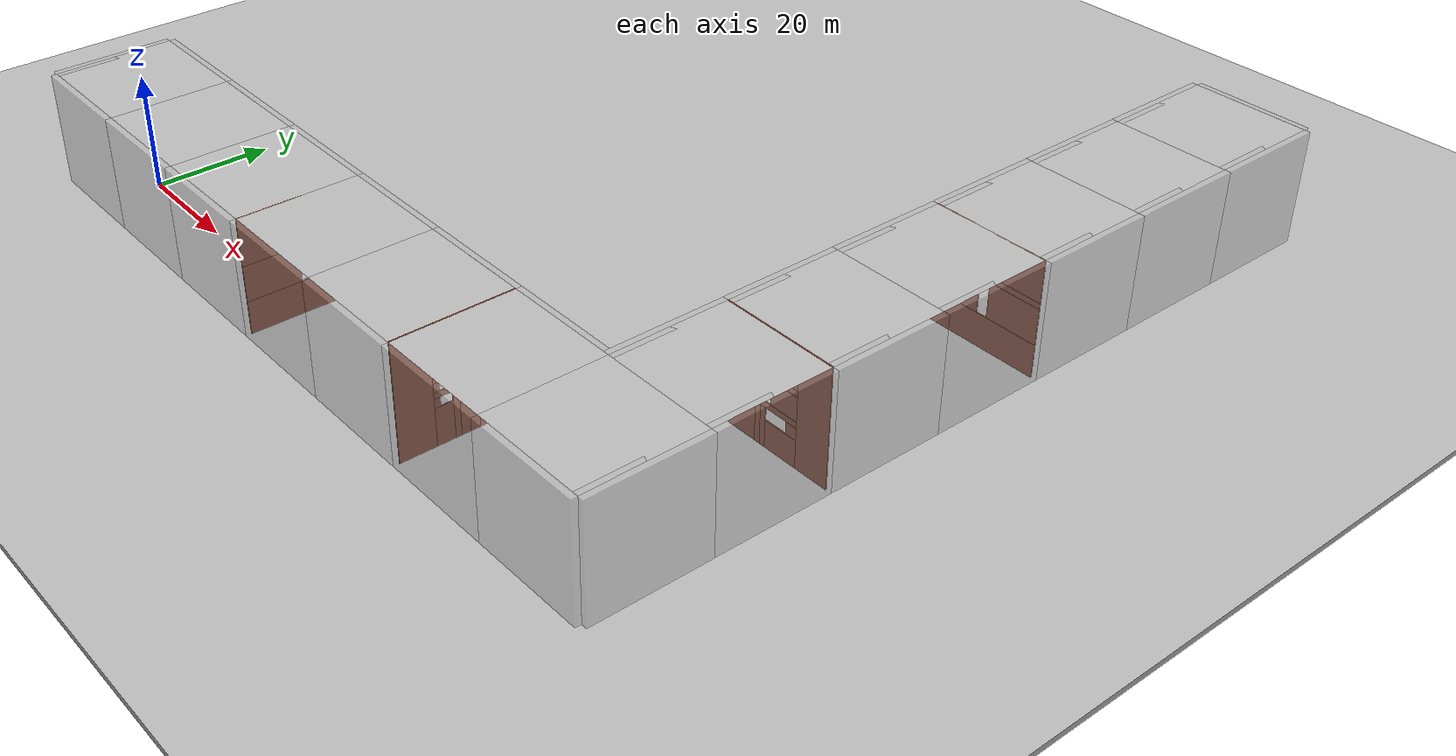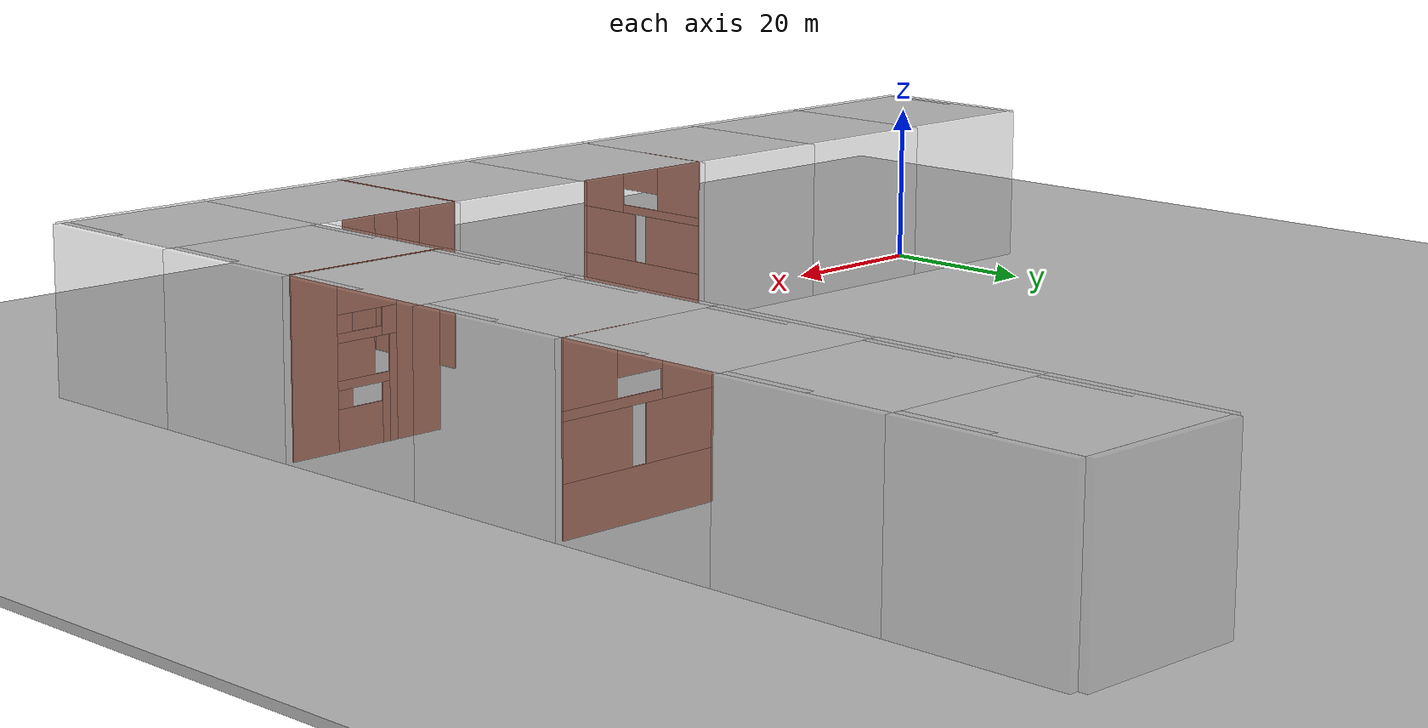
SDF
<?xml version="1.0" ?>
<sdf version="1.5">
  <world name="default">

    <gui>
      <camera name="user_camera">
        <pose>-7.5 -8.7 2.7 0.0 0.28 0.84</pose>
        <track_visual>
          <static>true</static>
          <use_model_frame>true</use_model_frame>
          <xyz>-5 1 1</xyz>
          <inherit_yaw>true</inherit_yaw>
        </track_visual>
      </camera>
    </gui>

    <scene>
      <ambient>0.8 0.8 0.8 1.0</ambient>
      <grid>false</grid>
      <shadows>true</shadows>
      <sky>
        <clouds>
          <speed>12</speed>
        </clouds>
      </sky>
    </scene>

    <light type="spot" name="light_1">
      <cast_shadows>true</cast_shadows>
      <pose>10 0 20 0 0 0</pose>
      <attenuation>
        <range>300</range>
        <constant>0.5</constant>
        <linear>0.01</linear>
        <quadratic>0.001</quadratic>
      </attenuation>
      <spot>
        <inner_angle>0.9</inner_angle>
        <outer_angle>2.0</outer_angle>
        <falloff>1.0</falloff>
      </spot>
      <direction>0 0 -1</direction>
    </light>

    <light type="spot" name="light_2">
      <cast_shadows>true</cast_shadows>
      <pose>30 0 20 0 0 0</pose>
      <attenuation>
        <range>300</range>
        <constant>0.5</constant>
        <linear>0.01</linear>
        <quadratic>0.001</quadratic>
      </attenuation>
      <spot>
        <inner_angle>0.9</inner_angle>
        <outer_angle>2.0</outer_angle>
        <falloff>1.0</falloff>
      </spot>
      <direction>0 0 -1</direction>
    </light>

    <light type="spot" name="light_3">
      <cast_shadows>true</cast_shadows>
      <pose>50 0 20 0 0 0</pose>
      <attenuation>
        <range>300</range>
        <constant>0.5</constant>
        <linear>0.01</linear>
        <quadratic>0.001</quadratic>
      </attenuation>
      <spot>
        <inner_angle>0.9</inner_angle>
        <outer_angle>2.0</outer_angle>
        <falloff>1.0</falloff>
      </spot>
      <direction>0 0 -1</direction>
    </light>

    <light type="spot" name="light_4">
      <cast_shadows>true</cast_shadows>
      <pose>70 0 20 0 0 0</pose>
      <attenuation>
        <range>300</range>
        <constant>0.5</constant>
        <linear>0.01</linear>
        <quadratic>0.001</quadratic>
      </attenuation>
      <spot>
        <inner_angle>0.9</inner_angle>
        <outer_angle>2.0</outer_angle>
        <falloff>1.0</falloff>
      </spot>
      <direction>0 0 -1</direction>
    </light>

    <light type="spot" name="light_5">
      <cast_shadows>true</cast_shadows>
      <pose>90 0 20 0 0 0</pose>
      <attenuation>
        <range>300</range>
        <constant>0.5</constant>
        <linear>0.01</linear>
        <quadratic>0.001</quadratic>
      </attenuation>
      <spot>
        <inner_angle>0.9</inner_angle>
        <outer_angle>2.0</outer_angle>
        <falloff>1.0</falloff>
      </spot>
      <direction>0 0 -1</direction>
    </light>

    <light type="spot" name="light_6">
      <cast_shadows>true</cast_shadows>
      <pose>110 0 20 0 0 0</pose>
      <attenuation>
        <range>300</range>
        <constant>0.5</constant>
        <linear>0.01</linear>
        <quadratic>0.001</quadratic>
      </attenuation>
      <spot>
        <inner_angle>0.9</inner_angle>
        <outer_angle>2.0</outer_angle>
        <falloff>1.0</falloff>
      </spot>
      <direction>0 0 -1</direction>
    </light>

    <light type="spot" name="light_7_1">
      <cast_shadows>true</cast_shadows>
      <pose>120 0 20 0 0 0</pose>
      <attenuation>
        <range>300</range>
        <constant>0.5</constant>
        <linear>0.01</linear>
        <quadratic>0.001</quadratic>
      </attenuation>
      <spot>
        <inner_angle>0.9</inner_angle>
        <outer_angle>2.0</outer_angle>
        <falloff>1.0</falloff>
      </spot>
      <direction>0 0 -1</direction>
    </light>

    <light type="spot" name="light_7_2">
      <cast_shadows>true</cast_shadows>
      <pose>120 10 20 0 0 0</pose>
      <attenuation>
        <range>300</range>
        <constant>0.5</constant>
        <linear>0.01</linear>
        <quadratic>0.001</quadratic>
      </attenuation>
      <spot>
        <inner_angle>0.9</inner_angle>
        <outer_angle>2.0</outer_angle>
        <falloff>1.0</falloff>
      </spot>
      <direction>0 0 -1</direction>
    </light>

    <light type="spot" name="light_8">
      <cast_shadows>true</cast_shadows>
      <pose>120 20 20 0 0 0</pose>
      <attenuation>
        <range>300</range>
        <constant>0.5</constant>
        <linear>0.01</linear>
        <quadratic>0.001</quadratic>
      </attenuation>
      <spot>
        <inner_angle>0.9</inner_angle>
        <outer_angle>2.0</outer_angle>
        <falloff>1.0</falloff>
      </spot>
      <direction>0 0 -1</direction>
    </light>

    <light type="spot" name="light_9">
      <cast_shadows>true</cast_shadows>
      <pose>120 40 20 0 0 0</pose>
      <attenuation>
        <range>300</range>
        <constant>0.5</constant>
        <linear>0.01</linear>
        <quadratic>0.001</quadratic>
      </attenuation>
      <spot>
        <inner_angle>0.9</inner_angle>
        <outer_angle>2.0</outer_angle>
        <falloff>1.0</falloff>
      </spot>
      <direction>0 0 -1</direction>
    </light>

    <light type="spot" name="light_10">
      <cast_shadows>true</cast_shadows>
      <pose>120 60 20 0 0 0</pose>
      <attenuation>
        <range>300</range>
        <constant>0.5</constant>
        <linear>0.01</linear>
        <quadratic>0.001</quadratic>
      </attenuation>
      <spot>
        <inner_angle>0.9</inner_angle>
        <outer_angle>2.0</outer_angle>
        <falloff>1.0</falloff>
      </spot>
      <direction>0 0 -1</direction>
    </light>

    <light type="spot" name="light_11">
      <cast_shadows>true</cast_shadows>
      <pose>120 80 20 0 0 0</pose>
      <attenuation>
        <range>300</range>
        <constant>0.5</constant>
        <linear>0.01</linear>
        <quadratic>0.001</quadratic>
      </attenuation>
      <spot>
        <inner_angle>0.9</inner_angle>
        <outer_angle>2.0</outer_angle>
        <falloff>1.0</falloff>
      </spot>
      <direction>0 0 -1</direction>
    </light>

    <light type="spot" name="light_12">
      <cast_shadows>true</cast_shadows>
      <pose>120 100 20 0 0 0</pose>
      <attenuation>
        <range>300</range>
        <constant>0.5</constant>
        <linear>0.01</linear>
        <quadratic>0.001</quadratic>
      </attenuation>
      <spot>
        <inner_angle>0.9</inner_angle>
        <outer_angle>2.0</outer_angle>
        <falloff>1.0</falloff>
      </spot>
      <direction>0 0 -1</direction>
    </light>

    <light type="spot" name="light_13">
      <cast_shadows>true</cast_shadows>
      <pose>120 120 20 0 0 0</pose>
      <attenuation>
        <range>300</range>
        <constant>0.5</constant>
        <linear>0.01</linear>
        <quadratic>0.001</quadratic>
      </attenuation>
      <spot>
        <inner_angle>0.9</inner_angle>
        <outer_angle>2.0</outer_angle>
        <falloff>1.0</falloff>
      </spot>
      <direction>0 0 -1</direction>
    </light>

    <include>
      <uri>model://race</uri>
      <pose>-10 0 0 0 0 0</pose>
    </include>

    <include>
      <uri>model://grass_plane</uri>
      <pose>0 0 0 0 0 0</pose>
    </include>

    <include>
      <uri>model://barycenter</uri>
      <pose>0 0 0 0 0 0</pose>
    </include>

    <physics name='default_physics' default='0' type='ode'>
      <gravity>0 0 -9.8066</gravity>
      <ode>
        <solver>
          <type>quick</type>
          <iters>10</iters>
          <sor>1.3</sor>
          <use_dynamic_moi_rescaling>0</use_dynamic_moi_rescaling>
        </solver>
        <constraints>
          <cfm>0</cfm>
          <erp>0.2</erp>
          <contact_max_correcting_vel>100</contact_max_correcting_vel>
          <contact_surface_layer>0.001</contact_surface_layer>
        </constraints>
      </ode>
      <max_step_size>0.004</max_step_size>
      <real_time_factor>1</real_time_factor>
      <real_time_update_rate>250</real_time_update_rate>
      <magnetic_field>6e-06 2.3e-05 -4.2e-05</magnetic_field>
    </physics>
  </world>
</sdf>

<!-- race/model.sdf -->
<sdf version='1.6'>
    <model name='race_box'>

        <static>1</static>
        <allow_auto_disable>1</allow_auto_disable>

        <!-- Start block -->

        <include>
            <uri>model://start_place</uri>
            <name>start_plane</name>
            <pose>10 0 0.1 0 0 1.57</pose>
        </include>

        <include>
            <uri>model://oneSidedPlane_2</uri>
            <name>floor_plane_1</name>
            <pose>10 0 20 0 0 0</pose>
        </include>

        <include>
            <uri>model://new_wall</uri>
            <name>back_wall</name>
            <pose>0 0 10 -1.57 -3.14 1.57</pose>
        </include>

        <include>
            <uri>model://new_wall</uri>
            <name>wall_1</name>
            <pose>10 10 10 -1.57 -0 0</pose>
        </include>

        <include>
            <uri>model://new_wall</uri>
            <name>wall_2</name>
            <pose>10 -10 10 1.57 -0 0</pose>
        </include>

        <!-- First block -->

        <include>
            <uri>model://oneSidedPlane_2</uri>
            <name>floor_plane_2</name>
            <pose>30 0 20 0 0 0</pose>
        </include>

        <include>
            <uri>model://oneSidedPlane_2</uri>
            <name>floor_plane_3</name>
            <pose>50 0 20 0 0 0</pose>
        </include>

        <include>
            <uri>model://new_wall</uri>
            <name>wall_3</name>
            <pose>30 10 10 -1.57 -0 0</pose>
        </include>

        <include>
            <uri>model://new_wall</uri>
            <name>wall_4</name>
            <pose>30 -10 10 1.57 -0 0</pose>
        </include>

        <include>
            <uri>model://new_wall</uri>
            <name>wall_5</name>
            <pose>50 10 10 -1.57 -0 0</pose>
        </include>

        <include>
            <uri>model://new_wall</uri>
            <name>wall_6</name>
            <pose>50 -10 10 1.57 -0 0</pose>
        </include>

        <include>
            <uri>model://t_wall</uri>
            <name>t_wall__1</name>
            <pose>60 -5.5 0 0 -0 1.57</pose>
        </include>

        <!-- Second block -->

        <include>
            <uri>model://oneSidedPlane_2</uri>
            <name>floor_plane_4</name>
            <pose>70 0 20 0 0 0</pose>
        </include>

        <include>
            <uri>model://oneSidedPlane_2</uri>
            <name>floor_plane_5</name>
            <pose>90 0 20 0 0 0</pose>
        </include>

        <include>
            <uri>model://new_wall</uri>
            <name>wall_8</name>
            <pose>70 10 10 -1.57 -0 0</pose>
        </include>

        <include>
            <uri>model://new_wall</uri>
            <name>wall_9</name>
            <pose>70 -10 10 1.57 -0 0</pose>
        </include>

        <include>
            <uri>model://new_wall</uri>
            <name>wall_10</name>
            <pose>90 10 10 -1.57 -0 0</pose>
        </include>

        <include>
            <uri>model://new_wall</uri>
            <name>wall_11</name>
            <pose>90 -10 10 1.57 -0 0</pose>
        </include>

        <include>
            <uri>model://e_wall</uri>
            <name>e_wall__1</name>
            <pose>100 10 0 0 -0 -1.57</pose>
        </include>

        <!-- Turn block -->

        <include>
            <uri>model://oneSidedPlane_2</uri>
            <name>floor_plane_6</name>
            <pose>110 0 20 0 0 0</pose>
        </include>

        <include>
            <uri>model://oneSidedPlane_2</uri>
            <name>floor_plane_7</name>
            <pose>130 0 20 0 0 0</pose>
        </include>

        <include>
            <uri>model://oneSidedPlane_2</uri>
            <name>floor_plane_8</name>
            <pose>130 20 20 0 0 0</pose>
        </include>

        <include>
            <uri>model://new_wall</uri>
            <name>wall_12</name>
            <pose>110 10 10 -1.57 -0 0</pose>
        </include>

        <include>
            <uri>model://new_wall</uri>
            <name>wall_13</name>
            <pose>110 -10 10 1.57 -0 0</pose>
        </include>

        <include>
            <uri>model://new_wall</uri>
            <name>wall_14</name>
            <pose>120 20 10 -1.57 -3.14 1.57</pose>
        </include>

        <include>
            <uri>model://new_wall</uri>
            <name>wall_15</name>
            <pose>130 -10 10 1.57 -0 0</pose>
        </include>

        <include>
            <uri>model://new_wall</uri>
            <name>wall_16</name>
            <pose>140 0 10 1.57 -3.14 1.57</pose>
        </include>

        <include>
            <uri>model://new_wall</uri>
            <name>wall_17</name>
            <pose>140 20 10 1.57 -3.14 1.57</pose>
        </include>

        <!-- Third block -->

        <include>
            <uri>model://oneSidedPlane_2</uri>
            <name>floor_plane_9</name>
            <pose>130 40 20 0 0 0</pose>
        </include>

        <include>
            <uri>model://oneSidedPlane_2</uri>
            <name>floor_plane_10</name>
            <pose>130 60 20 0 0 0</pose>
        </include>

        <include>
            <uri>model://new_wall</uri>
            <name>wall_18</name>
            <pose>120 40 10 -1.57 -3.14 1.57</pose>
        </include>

        <include>
            <uri>model://new_wall</uri>
            <name>wall_19</name>
            <pose>140 40 10 1.57 -3.14 1.57</pose>
        </include>

        <include>
            <uri>model://new_wall</uri>
            <name>wall_20</name>
            <pose>120 60 10 -1.57 -3.14 1.57</pose>
        </include>

        <include>
            <uri>model://new_wall</uri>
            <name>wall_21</name>
            <pose>140 60 10 1.57 -3.14 1.57</pose>
        </include>

        <include>
            <uri>model://s_wall</uri>
            <name>s_wall__1</name>
            <pose>120 30 0 0 -0 0</pose>
        </include>

        <!-- Fourth block -->

        <include>
            <uri>model://oneSidedPlane_2</uri>
            <name>floor_plane_11</name>
            <pose>130 80 20 0 0 0</pose>
        </include>

        <include>
            <uri>model://oneSidedPlane_2</uri>
            <name>floor_plane_12</name>
            <pose>130 100 20 0 0 0</pose>
        </include>

        <include>
            <uri>model://new_wall</uri>
            <name>wall_22</name>
            <pose>120 80 10 -1.57 -3.14 1.57</pose>
        </include>

        <include>
            <uri>model://new_wall</uri>
            <name>wall_23</name>
            <pose>140 80 10 1.57 -3.14 1.57</pose>
        </include>

        <include>
            <uri>model://new_wall</uri>
            <name>wall_24</name>
            <pose>120 100 10 -1.57 -3.14 1.57</pose>
        </include>

        <include>
            <uri>model://new_wall</uri>
            <name>wall_25</name>
            <pose>140 100 10 1.57 -3.14 1.57</pose>
        </include>

        <include>
            <uri>model://t_wall2</uri>
            <name>t_wall__2</name>
            <pose>124.5 70 0 0 -0 0</pose>
        </include>

        <!-- Finish block -->

        <include>
            <uri>model://finish_place</uri>
            <name>finish_place</name>
            <pose>130 120 0.1 0 0 0</pose>
        </include>

        <include>
            <uri>model://oneSidedPlane_2</uri>
            <name>floor_plane_13</name>
            <pose>130 120 20 0 0 0</pose>
        </include>

        <include>
            <uri>model://new_wall</uri>
            <name>front_wall</name>
            <pose>130 130 10 -1.57 -0 0</pose>
        </include>

        <include>
            <uri>model://new_wall</uri>
            <name>wall_26</name>
            <pose>120 120 10 -1.57 -3.14 1.57</pose>
        </include>

        <include>
            <uri>model://new_wall</uri>
            <name>wall_27</name>
            <pose>140 120 10 1.57 -3.14 1.57</pose>
        </include>

    </model>
</sdf>

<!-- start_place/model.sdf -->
<sdf version="1.4">
   <model name="start_place">
      <static>true</static>
      <link name="link">
         <collision name="collision">
            <geometry>
               <plane>
                  <normal>0 0 1</normal>
                  <size>20 20</size>
               </plane>
            </geometry>
            <surface>
               <friction>
                  <ode>
                     <mu>100</mu>
                     <mu2>50</mu2>
                  </ode>
               </friction>
            </surface>
         </collision>
         <visual name="visual">
            <cast_shadows>false</cast_shadows>
            <geometry>
               <plane>
                  <normal>0 0 1</normal>
                  <size>20 20</size>
               </plane>
            </geometry>
            <material>
               <script>
                  <uri>model://start_place/materials/scripts</uri>
                  <uri>model://start_place/materials/textures/</uri>
                  <name>StartPlace/Image</name>
               </script>
            </material>
         </visual>
      </link>
   </model>
</sdf>

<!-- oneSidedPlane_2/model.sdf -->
<sdf version="1.5">
  <model name="oneSidedPlane_2">
    <static>true</static>
    <link name="link">
      <collision name="collision">
        <geometry>
          <box><size>20 20 0.1</size></box>
        </geometry>
      </collision>
      <visual name="visual">
        <cast_shadows>false</cast_shadows>
        <geometry>
            <mesh>
                <scale>1 1 1</scale>
                <uri>model://oneSidedPlane_2/wall1.obj</uri>
            </mesh>
        </geometry>
    </visual>
    </link>
  </model>
</sdf>

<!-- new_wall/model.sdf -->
<sdf version="1.4">
   <model name="new_wall">
      <static>true</static>

      <link name="link">
         <collision name="collision">
            <geometry>
               <box>
                  <size>20 20 2</size>
               </box>
            </geometry>
            <surface>
               <friction>
                  <ode>
                     <mu>100</mu>
                     <mu2>50</mu2>
                  </ode>
               </friction>
            </surface>
         </collision>
         <visual name="visual">
            <cast_shadows>true</cast_shadows>
            <transparency>0.6</transparency>
            <geometry>
               <box>
                  <size>20 20 2</size>
               </box>
            </geometry>
            <material>
               <script>
                  <uri>model://new_wall/materials/scripts</uri>
                  <uri>model://new_wall/materials/textures/</uri>
                  <name>NewWall/Image</name>
               </script>
            </material>
         </visual>
      </link>
   </model>
</sdf>

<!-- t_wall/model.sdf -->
<sdf version='1.6'>
    <model name='t_wall'>

        <static>1</static>
        <allow_auto_disable>1</allow_auto_disable>

        <include>
            <uri>model://t_wall_3</uri>
            <name>t_wall_3_0</name>
            <pose>5.5 0 0 0 0 0</pose>
        </include>

        <include>
            <uri>model://t_wall_2</uri>
            <name>t_wall_2_1</name>
            <pose>0 0 6 0 0 0</pose>
        </include>

        <include>
            <uri>model://t_wall_2</uri>
            <name>t_wall_2_2</name>
            <pose>11 0 6 0 0 0</pose>
        </include>

        <include>
            <uri>model://t_wall_1</uri>
            <name>t_wall_1_0</name>
            <pose>5.5 0 12 0 0 0</pose>
        </include>

    </model>
</sdf>

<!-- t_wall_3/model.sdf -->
<sdf version='1.7'>
  <model name='t_wall_3'>
    <pose>10 0 0 0 -0 0</pose>
    <link name='Wall_4'>
      <collision name='Wall_4_Collision'>
        <geometry>
          <box>
            <size>20.15 0.15 6</size>
          </box>
        </geometry>
        <pose>0 0 3 0 -0 0</pose>
      </collision>
      <visual name='Wall_4_Visual'>
        <pose>0 0 3 0 -0 0</pose>
        <geometry>
          <box>
            <size>20.15 0.15 6</size>
          </box>
        </geometry>
        <material>
          <script>
            <uri>model://t_wall_3/scripts</uri>
            <name>Bricks_6</name>
          </script>
          <ambient>1 1 1 1</ambient>
        </material>
        <meta>
          <layer>0</layer>
        </meta>
      </visual>
      <pose>-0 0 0 0 -0 0</pose>
    </link>
    <static>1</static>
  </model>
</sdf>

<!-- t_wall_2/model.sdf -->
<sdf version='1.7'>
  <model name='t_wall_2'>
    <pose>4.5 0 0 0 -0 0</pose>
    <link name='Wall_2'>
      <collision name='Wall_2_Collision'>
        <geometry>
          <box>
            <size>9.15 0.15 6</size>
          </box>
        </geometry>
        <pose>0 0 3 0 -0 0</pose>
      </collision>
      <visual name='Wall_2_Visual'>
        <pose>0 0 3 0 -0 0</pose>
        <geometry>
          <box>
            <size>9.15 0.15 6</size>
          </box>
        </geometry>
        <material>
          <script>
            <uri>model://t_wall_2/scripts</uri>
            <name>Bricks_5</name>
          </script>
          <ambient>1 1 1 1</ambient>
        </material>
        <meta>
          <layer>0</layer>
        </meta>
      </visual>
      <pose>0 0 0 0 -0 0</pose>
    </link>
    <static>1</static>
  </model>
</sdf>

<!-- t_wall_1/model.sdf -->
<sdf version='1.7'>
  <model name='t_wall_1'>
    <pose>10 0 0 0 -0 0</pose>
    <link name='Wall_0'>
      <pose>-0 0 0 0 -0 0</pose>
      <visual name='Wall_0_Visual_0'>
        <pose>-6.5375 0 4 0 -0 0</pose>
        <geometry>
          <box>
            <size>7.075 0.15 8</size>
          </box>
        </geometry>
        <material>
          <script>
            <uri>model://t_wall_1/scripts</uri>
            <name>Bricks</name>
          </script>
          <ambient>1 1 1 1</ambient>
        </material>
        <meta>
          <layer>0</layer>
        </meta>
      </visual>
      <collision name='Wall_0_Collision_0'>
        <geometry>
          <box>
            <size>7.075 0.15 8</size>
          </box>
        </geometry>
        <pose>-6.5375 0 4 0 -0 0</pose>
      </collision>
      <visual name='Wall_0_Visual_1'>
        <pose>3.5375 0 0.5 0 -0 0</pose>
        <geometry>
          <box>
            <size>13.075 0.15 1</size>
          </box>
        </geometry>
        <material>
          <script>
            <uri>model://t_wall_1/scripts</uri>
            <name>Bricks_2</name>
          </script>
          <ambient>1 1 1 1</ambient>
        </material>
        <meta>
          <layer>0</layer>
        </meta>
      </visual>
      <collision name='Wall_0_Collision_1'>
        <geometry>
          <box>
            <size>13.075 0.15 1</size>
          </box>
        </geometry>
        <pose>3.5375 0 0.5 0 -0 0</pose>
      </collision>
      <visual name='Wall_0_Visual_2'>
        <pose>6.5375 0 4.5 0 -0 0</pose>
        <geometry>
          <box>
            <size>7.075 0.15 7</size>
          </box>
        </geometry>
        <material>
          <script>
            <uri>model://t_wall_1/scripts</uri>
            <name>Bricks_3</name>
          </script>
          <ambient>1 1 1 1</ambient>
        </material>
        <meta>
          <layer>0</layer>
        </meta>
      </visual>
      <collision name='Wall_0_Collision_2'>
        <geometry>
          <box>
            <size>7.075 0.15 7</size>
          </box>
        </geometry>
        <pose>6.5375 0 4.5 0 -0 0</pose>
      </collision>
      <visual name='Wall_0_Visual_3'>
        <pose>0 0 5.5 0 -0 0</pose>
        <geometry>
          <box>
            <size>6 0.15 5</size>
          </box>
        </geometry>
        <material>
          <script>
            <uri>model://t_wall_1/scripts</uri>
            <name>Bricks_4</name>
          </script>
          <ambient>1 1 1 1</ambient>
        </material>
        <meta>
          <layer>0</layer>
        </meta>
      </visual>
      <collision name='Wall_0_Collision_3'>
        <geometry>
          <box>
            <size>6 0.15 5</size>
          </box>
        </geometry>
        <pose>0 0 5.5 0 -0 0</pose>
      </collision>
    </link>
    <static>1</static>
  </model>
</sdf>

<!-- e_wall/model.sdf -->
<sdf version='1.6'>
    <model name='e_wall'>

        <static>1</static>
        <allow_auto_disable>1</allow_auto_disable>

        <include>
            <uri>model://e_wall_1</uri>
            <name>e_wall_1_1</name>
            <pose>0 0 10 0 1.57 0</pose>
        </include>

        <include>
            <uri>model://e_wall_2</uri>
            <name>e_wall_2</name>
            <pose>6 0 10 0 1.57 0</pose>
        </include>

        <include>
            <uri>model://e_wall_3</uri>
            <name>e_wall_3</name>
            <pose>10 0 10 0 1.57 0</pose>
        </include>

        <include>
            <uri>model://e_wall_1</uri>
            <name>e_wall_1_2</name>
            <pose>14 0 10 0 1.57 0</pose>
        </include>

    </model>
</sdf>

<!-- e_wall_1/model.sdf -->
<sdf version='1.7'>
  <model name='e_wall_1'>
    <pose>10 0 0 0 -0 0</pose>
    <link name='Wall_6'>
      <collision name='Wall_6_Collision'>
        <geometry>
          <box>
            <size>20.15 0.15 6</size>
          </box>
        </geometry>
        <pose>0 0 3 0 -0 0</pose>
      </collision>
      <visual name='Wall_6_Visual'>
        <pose>0 0 3 0 -0 0</pose>
        <geometry>
          <box>
            <size>20.15 0.15 6</size>
          </box>
        </geometry>
        <material>
          <script>
            <uri>model://e_wall_1/scripts</uri>
            <name>Bricks3_7</name>
          </script>
          <ambient>1 1 1 1</ambient>
        </material>
        <meta>
          <layer>0</layer>
        </meta>
      </visual>
      <pose>-0 0 0 0 -0 0</pose>
    </link>
    <static>1</static>
  </model>
</sdf>

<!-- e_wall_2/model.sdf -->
<sdf version='1.7'>
  <model name='e_wall_2'>
    <pose>10 0 0 0 -0 0</pose>
    <link name='Wall_8'>
      <pose>-0 0 0 0 -0 0</pose>
      <visual name='Wall_8_Visual_0'>
        <pose>-6.5375 0 2 0 -0 0</pose>
        <geometry>
          <box>
            <size>7.075 0.15 4</size>
          </box>
        </geometry>
        <material>
          <script>
            <uri>model://e_wall_2/scripts</uri>
            <name>Bricks3_8</name>
          </script>
          <ambient>1 1 1 1</ambient>
        </material>
        <meta>
          <layer>0</layer>
        </meta>
      </visual>
      <collision name='Wall_8_Collision_0'>
        <geometry>
          <box>
            <size>7.075 0.15 4</size>
          </box>
        </geometry>
        <pose>-6.5375 0 2 0 -0 0</pose>
      </collision>
      <visual name='Wall_8_Visual_1'>
        <pose>3.5375 0 0.5 0 -0 0</pose>
        <geometry>
          <box>
            <size>13.075 0.15 1</size>
          </box>
        </geometry>
        <material>
          <script>
            <uri>model://e_wall_2/scripts</uri>
            <name>Bricks3_9</name>
          </script>
          <ambient>1 1 1 1</ambient>
        </material>
        <meta>
          <layer>0</layer>
        </meta>
      </visual>
      <collision name='Wall_8_Collision_1'>
        <geometry>
          <box>
            <size>13.075 0.15 1</size>
          </box>
        </geometry>
        <pose>3.5375 0 0.5 0 -0 0</pose>
      </collision>
      <visual name='Wall_8_Visual_2'>
        <pose>6.5375 0 2.5 0 -0 0</pose>
        <geometry>
          <box>
            <size>7.075 0.15 3</size>
          </box>
        </geometry>
        <material>
          <script>
            <uri>model://e_wall_2/scripts</uri>
            <name>Bricks3_10</name>
          </script>
          <ambient>1 1 1 1</ambient>
        </material>
        <meta>
          <layer>0</layer>
        </meta>
      </visual>
      <collision name='Wall_8_Collision_2'>
        <geometry>
          <box>
            <size>7.075 0.15 3</size>
          </box>
        </geometry>
        <pose>6.5375 0 2.5 0 -0 0</pose>
      </collision>
      <visual name='Wall_8_Visual_3'>
        <pose>0 0 3.5 0 -0 0</pose>
        <geometry>
          <box>
            <size>6 0.15 1</size>
          </box>
        </geometry>
        <material>
          <script>
            <uri>model://e_wall_2/scripts</uri>
            <name>Bricks3_11</name>
          </script>
          <ambient>1 1 1 1</ambient>
        </material>
        <meta>
          <layer>0</layer>
        </meta>
      </visual>
      <collision name='Wall_8_Collision_3'>
        <geometry>
          <box>
            <size>6 0.15 1</size>
          </box>
        </geometry>
        <pose>0 0 3.5 0 -0 0</pose>
      </collision>
    </link>
    <static>1</static>
  </model>
</sdf>

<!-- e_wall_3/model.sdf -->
<sdf version='1.7'>
  <model name='e_wall_3'>
    <pose>10 0 0 0 -0 0</pose>
    <link name='Wall_10'>
      <pose>-0 0 0 0 -0 0</pose>
      <visual name='Wall_10_Visual_0'>
        <pose>-6.6625 0 2 0 -0 0</pose>
        <geometry>
          <box>
            <size>6.825 0.15 4</size>
          </box>
        </geometry>
        <material>
          <script>
            <uri>model://e_wall_3/scripts</uri>
            <name>Bricks3_12</name>
          </script>
          <ambient>1 1 1 1</ambient>
        </material>
        <meta>
          <layer>0</layer>
        </meta>
      </visual>
      <collision name='Wall_10_Collision_0'>
        <geometry>
          <box>
            <size>6.825 0.15 4</size>
          </box>
        </geometry>
        <pose>-6.6625 0 2 0 -0 0</pose>
      </collision>
      <visual name='Wall_10_Visual_1'>
        <pose>3.4125 0 0.5 0 -0 0</pose>
        <geometry>
          <box>
            <size>13.325 0.15 1</size>
          </box>
        </geometry>
        <material>
          <script>
            <uri>model://e_wall_3/scripts</uri>
            <name>Bricks3_13</name>
          </script>
          <ambient>1 1 1 1</ambient>
        </material>
        <meta>
          <layer>0</layer>
        </meta>
      </visual>
      <collision name='Wall_10_Collision_1'>
        <geometry>
          <box>
            <size>13.325 0.15 1</size>
          </box>
        </geometry>
        <pose>3.4125 0 0.5 0 -0 0</pose>
      </collision>
      <visual name='Wall_10_Visual_2'>
        <pose>-1.25 0 2.5 0 -0 0</pose>
        <geometry>
          <box>
            <size>1 0.15 3</size>
          </box>
        </geometry>
        <material>
          <script>
            <uri>model://e_wall_3/scripts</uri>
            <name>Bricks3_14</name>
          </script>
          <ambient>1 1 1 1</ambient>
        </material>
        <meta>
          <layer>0</layer>
        </meta>
      </visual>
      <collision name='Wall_10_Collision_2'>
        <geometry>
          <box>
            <size>1 0.15 3</size>
          </box>
        </geometry>
        <pose>-1.25 0 2.5 0 -0 0</pose>
      </collision>
      <visual name='Wall_10_Visual_3'>
        <pose>1.25 0 2.5 0 -0 0</pose>
        <geometry>
          <box>
            <size>1 0.15 3</size>
          </box>
        </geometry>
        <material>
          <script>
            <uri>model://e_wall_3/scripts</uri>
            <name>Bricks3_14</name>
          </script>
          <ambient>1 1 1 1</ambient>
        </material>
        <meta>
          <layer>0</layer>
        </meta>
      </visual>
      <collision name='Wall_10_Collision_3'>
        <geometry>
          <box>
            <size>1 0.15 3</size>
          </box>
        </geometry>
        <pose>1.25 0 2.5 0 -0 0</pose>
      </collision>
      <visual name='Wall_10_Visual_4'>
        <pose>6.6625 0 2.5 0 -0 0</pose>
        <geometry>
          <box>
            <size>6.825 0.15 3</size>
          </box>
        </geometry>
        <material>
          <script>
            <uri>model://e_wall_3/scripts</uri>
            <name>Bricks3_15</name>
          </script>
          <ambient>1 1 1 1</ambient>
        </material>
        <meta>
          <layer>0</layer>
        </meta>
      </visual>
      <collision name='Wall_10_Collision_4'>
        <geometry>
          <box>
            <size>6.825 0.15 3</size>
          </box>
        </geometry>
        <pose>6.6625 0 2.5 0 -0 0</pose>
      </collision>
      <visual name='Wall_10_Visual_5'>
        <pose>-2.5 0 3.5 0 -0 0</pose>
        <geometry>
          <box>
            <size>1.5 0.15 1</size>
          </box>
        </geometry>
        <material>
          <script>
            <uri>model://e_wall_3/scripts</uri>
            <name>Bricks3_16</name>
          </script>
          <ambient>1 1 1 1</ambient>
        </material>
        <meta>
          <layer>0</layer>
        </meta>
      </visual>
      <collision name='Wall_10_Collision_5'>
        <geometry>
          <box>
            <size>1.5 0.15 1</size>
          </box>
        </geometry>
        <pose>-2.5 0 3.5 0 -0 0</pose>
      </collision>
      <visual name='Wall_10_Visual_6'>
        <pose>0 0 3.5 0 -0 0</pose>
        <geometry>
          <box>
            <size>1.5 0.15 1</size>
          </box>
        </geometry>
        <material>
          <script>
            <uri>model://e_wall_3/scripts</uri>
            <name>Bricks3_16</name>
          </script>
          <ambient>1 1 1 1</ambient>
        </material>
        <meta>
          <layer>0</layer>
        </meta>
      </visual>
      <collision name='Wall_10_Collision_6'>
        <geometry>
          <box>
            <size>1.5 0.15 1</size>
          </box>
        </geometry>
        <pose>0 0 3.5 0 -0 0</pose>
      </collision>
      <visual name='Wall_10_Visual_7'>
        <pose>2.5 0 3.5 0 -0 0</pose>
        <geometry>
          <box>
            <size>1.5 0.15 1</size>
          </box>
        </geometry>
        <material>
          <script>
            <uri>model://e_wall_3/scripts</uri>
            <name>Bricks3_16</name>
          </script>
          <ambient>1 1 1 1</ambient>
        </material>
        <meta>
          <layer>0</layer>
        </meta>
      </visual>
      <collision name='Wall_10_Collision_7'>
        <geometry>
          <box>
            <size>1.5 0.15 1</size>
          </box>
        </geometry>
        <pose>2.5 0 3.5 0 -0 0</pose>
      </collision>
    </link>
    <static>1</static>
  </model>
</sdf>

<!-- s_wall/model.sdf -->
<sdf version='1.6'>
    <model name='s_wall'>

        <static>1</static>
        <allow_auto_disable>1</allow_auto_disable>

        <include>
            <uri>model://s_wall_1</uri>
            <name>e_wall_1_1</name>
            <pose>0 0 10 0 1.57 0</pose>
        </include>

        <include>
            <uri>model://s_wall_2</uri>
            <name>e_wall_2</name>
            <pose>6 0 10 0 1.57 0</pose>
        </include>

        <include>
            <uri>model://s_wall_1</uri>
            <name>e_wall_1_2</name>
            <pose>14 0 10 0 1.57 0</pose>
        </include>

    </model>
</sdf>

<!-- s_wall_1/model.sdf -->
<sdf version='1.7'>
  <model name='s_wall_1'>
    <pose>10 0 0 0 -0 0</pose>
    <link name='Wall_6'>
      <collision name='Wall_6_Collision'>
        <geometry>
          <box>
            <size>20.15 0.15 6</size>
          </box>
        </geometry>
        <pose>0 0 3 0 -0 0</pose>
      </collision>
      <visual name='Wall_6_Visual'>
        <pose>0 0 3 0 -0 0</pose>
        <geometry>
          <box>
            <size>20.15 0.15 6</size>
          </box>
        </geometry>
        <material>
          <script>
            <uri>model://s_wall_1/scripts</uri>
            <name>Bricks4_7</name>
          </script>
          <ambient>1 1 1 1</ambient>
        </material>
        <meta>
          <layer>0</layer>
        </meta>
      </visual>
      <pose>-0 0 0 0 -0 0</pose>
    </link>
    <static>1</static>
  </model>
</sdf>

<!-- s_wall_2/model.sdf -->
<sdf version='1.7'>
  <model name='s_wall_2'>
    <pose>10 0 0 0 -0 0</pose>
    <link name='Wall_0'>
      <pose>-0 0 0 0 -0 0</pose>
      <visual name='Wall_0_Visual_0'>
        <pose>-7.5375 0 4 0 -0 0</pose>
        <geometry>
          <box>
            <size>5.075 0.15 8</size>
          </box>
        </geometry>
        <material>
          <script>
            <uri>model://s_wall_2/scripts</uri>
            <name>Bricks4_17</name>
          </script>
          <ambient>1 1 1 1</ambient>
        </material>
        <meta>
          <layer>0</layer>
        </meta>
      </visual>
      <collision name='Wall_0_Collision_0'>
        <geometry>
          <box>
            <size>5.075 0.15 8</size>
          </box>
        </geometry>
        <pose>-7.5375 0 4 0 -0 0</pose>
      </collision>
      <visual name='Wall_0_Visual_1'>
        <pose>-3.5 0 1 0 -0 0</pose>
        <geometry>
          <box>
            <size>3 0.15 2</size>
          </box>
        </geometry>
        <material>
          <script>
            <uri>model://s_wall_2/scripts</uri>
            <name>Bricks4_18</name>
          </script>
          <ambient>1 1 1 1</ambient>
        </material>
        <meta>
          <layer>0</layer>
        </meta>
      </visual>
      <collision name='Wall_0_Collision_1'>
        <geometry>
          <box>
            <size>3 0.15 2</size>
          </box>
        </geometry>
        <pose>-3.5 0 1 0 -0 0</pose>
      </collision>
      <visual name='Wall_0_Visual_2'>
        <pose>4.0375 0 0.5 0 -0 0</pose>
        <geometry>
          <box>
            <size>12.075 0.15 1</size>
          </box>
        </geometry>
        <material>
          <script>
            <uri>model://s_wall_2/scripts</uri>
            <name>Bricks4_19</name>
          </script>
          <ambient>1 1 1 1</ambient>
        </material>
        <meta>
          <layer>0</layer>
        </meta>
      </visual>
      <collision name='Wall_0_Collision_2'>
        <geometry>
          <box>
            <size>12.075 0.15 1</size>
          </box>
        </geometry>
        <pose>4.0375 0 0.5 0 -0 0</pose>
      </collision>
      <visual name='Wall_0_Visual_3'>
        <pose>2.5 0 4.5 0 -0 0</pose>
        <geometry>
          <box>
            <size>1 0.15 7</size>
          </box>
        </geometry>
        <material>
          <script>
            <uri>model://s_wall_2/scripts</uri>
            <name>Bricks4_20</name>
          </script>
          <ambient>1 1 1 1</ambient>
        </material>
        <meta>
          <layer>0</layer>
        </meta>
      </visual>
      <collision name='Wall_0_Collision_3'>
        <geometry>
          <box>
            <size>1 0.15 7</size>
          </box>
        </geometry>
        <pose>2.5 0 4.5 0 -0 0</pose>
      </collision>
      <visual name='Wall_0_Visual_4'>
        <pose>6.5375 0 1.5 0 -0 0</pose>
        <geometry>
          <box>
            <size>7.075 0.15 1</size>
          </box>
        </geometry>
        <material>
          <script>
            <uri>model://s_wall_2/scripts</uri>
            <name>Bricks4_21</name>
          </script>
          <ambient>1 1 1 1</ambient>
        </material>
        <meta>
          <layer>0</layer>
        </meta>
      </visual>
      <collision name='Wall_0_Collision_4'>
        <geometry>
          <box>
            <size>7.075 0.15 1</size>
          </box>
        </geometry>
        <pose>6.5375 0 1.5 0 -0 0</pose>
      </collision>
      <visual name='Wall_0_Visual_5'>
        <pose>-2.5 0 5 0 -0 0</pose>
        <geometry>
          <box>
            <size>1 0.15 6</size>
          </box>
        </geometry>
        <material>
          <script>
            <uri>model://s_wall_2/scripts</uri>
            <name>Bricks4_21</name>
          </script>
          <ambient>1 1 1 1</ambient>
        </material>
        <meta>
          <layer>0</layer>
        </meta>
      </visual>
      <collision name='Wall_0_Collision_5'>
        <geometry>
          <box>
            <size>1 0.15 6</size>
          </box>
        </geometry>
        <pose>-2.5 0 5 0 -0 0</pose>
      </collision>
      <visual name='Wall_0_Visual_6'>
        <pose>-2.5 0 5 0 -0 0</pose>
        <geometry>
          <box>
            <size>1 0.15 6</size>
          </box>
        </geometry>
        <material>
          <script>
            <uri>model://s_wall_2/scripts</uri>
            <name>Bricks4_22</name>
          </script>
          <ambient>1 1 1 1</ambient>
        </material>
        <meta>
          <layer>0</layer>
        </meta>
      </visual>
      <collision name='Wall_0_Collision_6'>
        <geometry>
          <box>
            <size>1 0.15 6</size>
          </box>
        </geometry>
        <pose>-2.5 0 5 0 -0 0</pose>
      </collision>
      <visual name='Wall_0_Visual_7'>
        <pose>7.5375 0 5 0 -0 0</pose>
        <geometry>
          <box>
            <size>5.075 0.15 6</size>
          </box>
        </geometry>
        <material>
          <script>
            <uri>model://s_wall_2/scripts</uri>
            <name>Bricks4_23</name>
          </script>
          <ambient>1 1 1 1</ambient>
        </material>
        <meta>
          <layer>0</layer>
        </meta>
      </visual>
      <collision name='Wall_0_Collision_7'>
        <geometry>
          <box>
            <size>5.075 0.15 6</size>
          </box>
        </geometry>
        <pose>7.5375 0 5 0 -0 0</pose>
      </collision>
      <visual name='Wall_0_Visual_8'>
        <pose>0 0 5.5 0 -0 0</pose>
        <geometry>
          <box>
            <size>4 0.15 5</size>
          </box>
        </geometry>
        <material>
          <script>
            <uri>model://s_wall_2/scripts</uri>
            <name>Bricks4_23</name>
          </script>
          <ambient>1 1 1 1</ambient>
        </material>
        <meta>
          <layer>0</layer>
        </meta>
      </visual>
      <collision name='Wall_0_Collision_8'>
        <geometry>
          <box>
            <size>4 0.15 5</size>
          </box>
        </geometry>
        <pose>0 0 5.5 0 -0 0</pose>
      </collision>
      <visual name='Wall_0_Visual_9'>
        <pose>0 0 5.5 0 -0 0</pose>
        <geometry>
          <box>
            <size>4 0.15 5</size>
          </box>
        </geometry>
        <material>
          <script>
            <uri>model://s_wall_2/scripts</uri>
            <name>Bricks4_24</name>
          </script>
          <ambient>1 1 1 1</ambient>
        </material>
        <meta>
          <layer>0</layer>
        </meta>
      </visual>
      <collision name='Wall_0_Collision_9'>
        <geometry>
          <box>
            <size>4 0.15 5</size>
          </box>
        </geometry>
        <pose>0 0 5.5 0 -0 0</pose>
      </collision>
      <visual name='Wall_0_Visual_10'>
        <pose>-4 0 7 0 -0 0</pose>
        <geometry>
          <box>
            <size>2 0.15 2</size>
          </box>
        </geometry>
        <material>
          <script>
            <uri>model://s_wall_2/scripts</uri>
            <name>Bricks4_25</name>
          </script>
          <ambient>1 1 1 1</ambient>
        </material>
        <meta>
          <layer>0</layer>
        </meta>
      </visual>
      <collision name='Wall_0_Collision_10'>
        <geometry>
          <box>
            <size>2 0.15 2</size>
          </box>
        </geometry>
        <pose>-4 0 7 0 -0 0</pose>
      </collision>
      <visual name='Wall_0_Visual_11'>
        <pose>4 0 7 0 -0 0</pose>
        <geometry>
          <box>
            <size>2 0.15 2</size>
          </box>
        </geometry>
        <material>
          <script>
            <uri>model://s_wall_2/scripts</uri>
            <name>Bricks4_25</name>
          </script>
          <ambient>1 1 1 1</ambient>
        </material>
        <meta>
          <layer>0</layer>
        </meta>
      </visual>
      <collision name='Wall_0_Collision_11'>
        <geometry>
          <box>
            <size>2 0.15 2</size>
          </box>
        </geometry>
        <pose>4 0 7 0 -0 0</pose>
      </collision>
    </link>
    <static>1</static>
  </model>
</sdf>

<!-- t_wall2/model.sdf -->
<sdf version='1.6'>
    <model name='t_wall2'>

        <static>1</static>
        <allow_auto_disable>1</allow_auto_disable>

        <include>
            <uri>model://t_wall_6</uri>
            <name>t_wall_3_0</name>
            <pose>5.5 0 0 0 0 0</pose>
        </include>

        <include>
            <uri>model://t_wall_5</uri>
            <name>t_wall_2_1</name>
            <pose>0 0 6 0 0 0</pose>
        </include>

        <include>
            <uri>model://t_wall_5</uri>
            <name>t_wall_2_2</name>
            <pose>11 0 6 0 0 0</pose>
        </include>

        <include>
            <uri>model://t_wall_4</uri>
            <name>t_wall_1_0</name>
            <pose>5.5 0 12 0 0 0</pose>
        </include>

    </model>
</sdf>

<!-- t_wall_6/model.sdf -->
<sdf version='1.7'>
  <model name='t_wall_6'>
    <pose>10 0 0 0 -0 0</pose>
    <link name='Wall_4'>
      <collision name='Wall_4_Collision'>
        <geometry>
          <box>
            <size>20.15 0.15 6</size>
          </box>
        </geometry>
        <pose>0 0 3 0 -0 0</pose>
      </collision>
      <visual name='Wall_4_Visual'>
        <pose>0 0 3 0 -0 0</pose>
        <geometry>
          <box>
            <size>20.15 0.15 6</size>
          </box>
        </geometry>
        <material>
          <script>
            <uri>model://t_wall_6/scripts</uri>
            <name>Bricks2_6</name>
          </script>
          <ambient>1 1 1 1</ambient>
        </material>
        <meta>
          <layer>0</layer>
        </meta>
      </visual>
      <pose>-0 0 0 0 -0 0</pose>
    </link>
    <static>1</static>
  </model>
</sdf>

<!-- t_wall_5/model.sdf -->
<sdf version='1.7'>
  <model name='t_wall_5'>
    <pose>4.5 0 0 0 -0 0</pose>
    <link name='Wall_2'>
      <collision name='Wall_2_Collision'>
        <geometry>
          <box>
            <size>9.15 0.15 6</size>
          </box>
        </geometry>
        <pose>0 0 3 0 -0 0</pose>
      </collision>
      <visual name='Wall_2_Visual'>
        <pose>0 0 3 0 -0 0</pose>
        <geometry>
          <box>
            <size>9.15 0.15 6</size>
          </box>
        </geometry>
        <material>
          <script>
            <uri>model://t_wall_5/scripts</uri>
            <name>Bricks2_5</name>
          </script>
          <ambient>1 1 1 1</ambient>
        </material>
        <meta>
          <layer>0</layer>
        </meta>
      </visual>
      <pose>0 0 0 0 -0 0</pose>
    </link>
    <static>1</static>
  </model>
</sdf>

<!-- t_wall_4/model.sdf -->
<sdf version='1.7'>
  <model name='t_wall_4'>
    <pose>10 0 0 0 -0 0</pose>
    <link name='Wall_0'>
      <pose>-0 0 0 0 -0 0</pose>
      <visual name='Wall_0_Visual_0'>
        <pose>-6.5375 0 4 0 -0 0</pose>
        <geometry>
          <box>
            <size>7.075 0.15 8</size>
          </box>
        </geometry>
        <material>
          <script>
            <uri>model://t_wall_4/scripts</uri>
            <name>Bricks2</name>
          </script>
          <ambient>1 1 1 1</ambient>
        </material>
        <meta>
          <layer>0</layer>
        </meta>
      </visual>
      <collision name='Wall_0_Collision_0'>
        <geometry>
          <box>
            <size>7.075 0.15 8</size>
          </box>
        </geometry>
        <pose>-6.5375 0 4 0 -0 0</pose>
      </collision>
      <visual name='Wall_0_Visual_1'>
        <pose>3.5375 0 0.5 0 -0 0</pose>
        <geometry>
          <box>
            <size>13.075 0.15 1</size>
          </box>
        </geometry>
        <material>
          <script>
            <uri>model://t_wall_4/scripts</uri>
            <name>Bricks2_2</name>
          </script>
          <ambient>1 1 1 1</ambient>
        </material>
        <meta>
          <layer>0</layer>
        </meta>
      </visual>
      <collision name='Wall_0_Collision_1'>
        <geometry>
          <box>
            <size>13.075 0.15 1</size>
          </box>
        </geometry>
        <pose>3.5375 0 0.5 0 -0 0</pose>
      </collision>
      <visual name='Wall_0_Visual_2'>
        <pose>6.5375 0 4.5 0 -0 0</pose>
        <geometry>
          <box>
            <size>7.075 0.15 7</size>
          </box>
        </geometry>
        <material>
          <script>
            <uri>model://t_wall_4/scripts</uri>
            <name>Bricks2_3</name>
          </script>
          <ambient>1 1 1 1</ambient>
        </material>
        <meta>
          <layer>0</layer>
        </meta>
      </visual>
      <collision name='Wall_0_Collision_2'>
        <geometry>
          <box>
            <size>7.075 0.15 7</size>
          </box>
        </geometry>
        <pose>6.5375 0 4.5 0 -0 0</pose>
      </collision>
      <visual name='Wall_0_Visual_3'>
        <pose>0 0 5.5 0 -0 0</pose>
        <geometry>
          <box>
            <size>6 0.15 5</size>
          </box>
        </geometry>
        <material>
          <script>
            <uri>model://t_wall_4/scripts</uri>
            <name>Bricks2_4</name>
          </script>
          <ambient>1 1 1 1</ambient>
        </material>
        <meta>
          <layer>0</layer>
        </meta>
      </visual>
      <collision name='Wall_0_Collision_3'>
        <geometry>
          <box>
            <size>6 0.15 5</size>
          </box>
        </geometry>
        <pose>0 0 5.5 0 -0 0</pose>
      </collision>
    </link>
    <static>1</static>
  </model>
</sdf>

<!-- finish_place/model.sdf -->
<sdf version="1.4">
   <model name="finish_place">
      <static>true</static>
      <link name="link">
         <collision name="collision">
            <geometry>
               <plane>
                  <normal>0 0 1</normal>
                  <size>20 20</size>
               </plane>
            </geometry>
            <surface>
               <friction>
                  <ode>
                     <mu>100</mu>
                     <mu2>50</mu2>
                  </ode>
               </friction>
            </surface>
         </collision>
         <visual name="visual">
            <cast_shadows>false</cast_shadows>
            <geometry>
               <plane>
                  <normal>0 0 1</normal>
                  <size>20 20</size>
               </plane>
            </geometry>
            <material>
               <script>
                  <uri>model://finish_place/materials/scripts</uri>
                  <uri>model://finish_place/materials/textures/</uri>
                  <name>FinishPlace/Image</name>
               </script>
            </material>
         </visual>
      </link>
   </model>
</sdf>

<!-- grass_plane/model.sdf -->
<sdf version="1.4">
   <model name="grass_plane">
      <static>true</static>
      <link name="link">
         <collision name="collision">
            <geometry>
               <plane>
                  <normal>0 0 1</normal>
                  <size>1000 1000</size>
               </plane>
            </geometry>
            <surface>
               <friction>
                  <ode>
                     <mu>100</mu>
                     <mu2>50</mu2>
                  </ode>
               </friction>
            </surface>
         </collision>
         <visual name="visual">
            <cast_shadows>false</cast_shadows>
            <geometry>
               <plane>
                  <normal>0 0 1</normal>
                  <size>1000 1000</size>
               </plane>
            </geometry>
            <material>
               <script>
                  <uri>model://grass_plane/materials/scripts</uri>
                  <uri>model://grass_plane/materials/textures/</uri>
                  <name>GrassPlane/Image</name>
               </script>
            </material>
         </visual>
      </link>
   </model>
</sdf>

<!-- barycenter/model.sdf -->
<sdf version='1.6'>
  <model name='barycenter'>
    <link name='link'>
      <pose frame=''>0 0 0 0 0 0</pose>
      <gravity>0</gravity>
      <self_collide>0</self_collide>
      <kinematic>0</kinematic>
      <visual name='visual'>
        <pose frame=''>0 0 0 0 -0 0</pose>
        <geometry>
          <box>
            <size>0.01 0.01 0.01</size>
          </box>
        </geometry>
        <transparency>1</transparency>
        <cast_shadows>0</cast_shadows>
      </visual>
    </link>
    <static>0</static>
    <allow_auto_disable>1</allow_auto_disable>
  </model>
</sdf>
